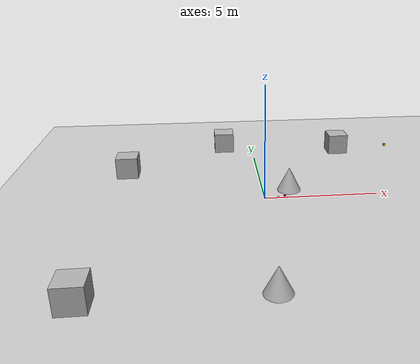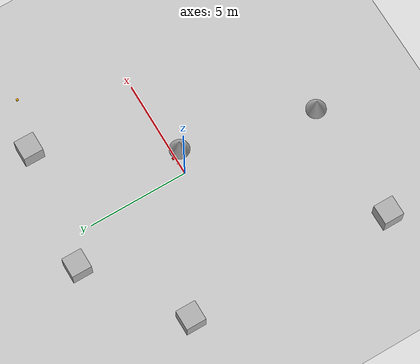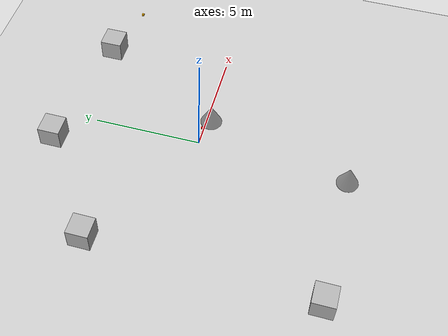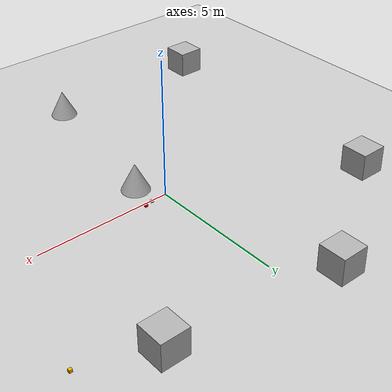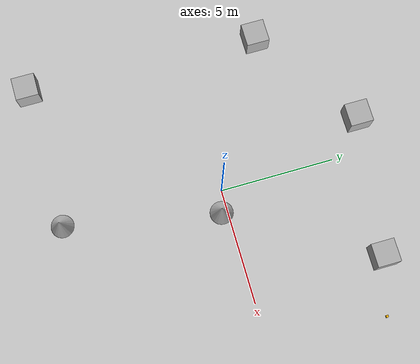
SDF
<sdf version='1.10'>
  <world name='empty'>
    <physics name='1ms' type='ignored'>
      <max_step_size>0.001</max_step_size>
      <real_time_factor>1</real_time_factor>
      <real_time_update_rate>1000</real_time_update_rate>
    </physics>
    <plugin name='gz::sim::systems::Physics' filename='gz-sim-physics-system'/>
    <plugin name='gz::sim::systems::UserCommands' filename='gz-sim-user-commands-system'/>
    <plugin name='gz::sim::systems::SceneBroadcaster' filename='gz-sim-scene-broadcaster-system'/>
    <plugin name='gz::sim::systems::Contact' filename='gz-sim-contact-system'/>

    <gravity>0 0 -9.8000000000000007</gravity>
    <magnetic_field>5.5644999999999998e-06 2.2875799999999999e-05 -4.2388400000000002e-05</magnetic_field>
    <atmosphere type='adiabatic'/>
    <scene>
      <ambient>0.400000006 0.400000006 0.400000006 1</ambient>
      <background>0.699999988 0.699999988 0.699999988 1</background>
      <shadows>true</shadows>
    </scene>
    <model name='ground_plane'>
      <static>true</static>
      <link name='link'>
        <collision name='collision'>
          <geometry>
            <plane>
              <normal>0 0 1</normal>
              <size>100 100</size>
            </plane>
          </geometry>
          <surface>
            <friction>
              <ode/>
            </friction>
            <bounce/>
            <contact/>
          </surface>
        </collision>
        <visual name='visual'>
          <geometry>
            <plane>
              <normal>0 0 1</normal>
              <size>100 100</size>
            </plane>
          </geometry>
          <material>
            <ambient>0.800000012 0.800000012 0.800000012 1</ambient>
            <diffuse>0.800000012 0.800000012 0.800000012 1</diffuse>
            <specular>0.800000012 0.800000012 0.800000012 1</specular>
          </material>
        </visual>
        <pose>0 0 0 0 0 0</pose>
        <inertial>
          <pose>0 0 0 0 0 0</pose>
          <mass>1</mass>
          <inertia>
            <ixx>1</ixx>
            <ixy>0</ixy>
            <ixz>0</ixz>
            <iyy>1</iyy>
            <iyz>0</iyz>
            <izz>1</izz>
          </inertia>
        </inertial>
        <enable_wind>false</enable_wind>
      </link>
      <pose>0 0 0 0 0 0</pose>
      <self_collide>false</self_collide>
    </model>
    <model name='box'>
      <pose>4.543856006001799 5.6987127331706091 0.49999999990199806 6.2287739151293738e-22 9.3279666454713669e-22 -3.6315533669320137e-22</pose>
      <link name='box_link'>
        <inertial>
          <inertia>
            <ixx>0.16666</ixx>
            <ixy>0</ixy>
            <ixz>0</ixz>
            <iyy>0.16666</iyy>
            <iyz>0</iyz>
            <izz>0.16666</izz>
          </inertia>
          <mass>1</mass>
          <pose>0 0 0 0 0 0</pose>
        </inertial>
        <collision name='box_collision'>
          <geometry>
            <box>
              <size>1 1 1</size>
            </box>
          </geometry>
          <surface>
            <friction>
              <ode/>
            </friction>
            <bounce/>
            <contact/>
          </surface>
        </collision>
        <visual name='box_visual'>
          <geometry>
            <box>
              <size>1 1 1</size>
            </box>
          </geometry>
          <material>
            <ambient>0.300000012 0.300000012 0.300000012 1</ambient>
            <diffuse>0.699999988 0.699999988 0.699999988 1</diffuse>
            <specular>1 1 1 1</specular>
          </material>
        </visual>
        <pose>0 0 0 0 0 0</pose>
        <enable_wind>false</enable_wind>
      </link>
      <static>false</static>
      <self_collide>false</self_collide>
    </model>
    <model name='box_0'>
      <pose>7.0 5.0 0.5 0 0 0</pose>
      <link name='box_link'>
        <inertial>
          <inertia>
            <ixx>0.016666</ixx>
            <ixy>0</ixy>
            <ixz>0</ixz>
            <iyy>0.016666</iyy>
            <iyz>0</iyz>
            <izz>0.016666</izz>
          </inertia>
          <mass>1</mass>
          <pose>0 0 0 0 0 0</pose>
        </inertial>
        <collision name='box_collision'>
          <geometry>
            <box>
              <size>0.1 0.1 0.1</size>
            </box>
          </geometry>
          <surface>
            <friction>
              <ode/>
            </friction>
            <bounce/>
            <contact/>
          </surface>
        </collision>
        <visual name='box_visual'>
          <geometry>
            <box>
              <size>0.1 0.1 0.1</size>
            </box>
          </geometry>
          <material>
            <ambient>0.300000012 0.300000012 0.300000012 1</ambient>
            <diffuse>1.0 0.699999988 0.0 1</diffuse>
            <specular>1 1 1 1</specular>
          </material>
        </visual>
        <pose>0 0 0 0 0 0</pose>
        <enable_wind>false</enable_wind>
      </link>
      <static>false</static>
      <self_collide>false</self_collide>
    </model>

 <model name='box_e'>
      <pose>0.9 0.1 0 0 0 0</pose>
      <link name='box_link'>
        <inertial>
          <inertia>
            <ixx>0.016666</ixx>
            <ixy>0</ixy>
            <ixz>0</ixz>
            <iyy>0.016666</iyy>
            <iyz>0</iyz>
            <izz>0.016666</izz>
          </inertia>
          <mass>1</mass>
          <pose>0 0 0 0 0 0</pose>
        </inertial>
        <collision name='box_collision'>
          <geometry>
            <box>
              <size>0.1 0.1 0.1</size>
            </box>
          </geometry>
          <surface>
            <friction>
              <ode/>
            </friction>
            <bounce/>
            <contact/>
          </surface>
        </collision>
        <visual name='box_visual'>
          <geometry>
            <box>
              <size>0.1 0.1 0.1</size>
            </box>
          </geometry>
          <material>
            <ambient>0.9 0.0 0.0 1</ambient>
            <diffuse>1.0 0.0 0.0 1</diffuse>
            <specular>1 1 1 1</specular>
          </material>
        </visual>
        <pose>0 0 0 0 0 0</pose>
        <enable_wind>false</enable_wind>
      </link>
      <static>false</static>
      <self_collide>false</self_collide>
    </model>

<model name='box_f'>
      <pose>0.6 0.02 0 0 0 0</pose>
      <link name='box_link'>
        <inertial>
          <inertia>
            <ixx>0.016666</ixx>
            <ixy>0</ixy>
            <ixz>0</ixz>
            <iyy>0.016666</iyy>
            <iyz>0</iyz>
            <izz>0.016666</izz>
          </inertia>
          <mass>1</mass>
          <pose>0 0 0 0 0 0</pose>
        </inertial>
        <collision name='box_collision'>
          <geometry>
            <box>
              <size>0.1 0.1 0.1</size>
            </box>
          </geometry>
          <surface>
            <friction>
              <ode/>
            </friction>
            <bounce/>
            <contact/>
          </surface>
        </collision>
        <visual name='box_visual'>
          <geometry>
            <box>
              <size>0.1 0.1 0.1</size>
            </box>
          </geometry>
          <material>
            <ambient>0.8 0.300000012 0.300000012 1</ambient>
            <diffuse>1.0 0.0 0.0 1</diffuse>
            <specular>1 1 1 1</specular>
          </material>
        </visual>
        <pose>0 0 0 0 0 0</pose>
        <enable_wind>false</enable_wind>
      </link>
      <static>false</static>
      <self_collide>false</self_collide>
    </model>

    <model name='box_1'>
      <pose>-6.213170180846225 3.3314655650004843 0.49999999990199806 6.2287739151293738e-22 9.3279666454713669e-22 -3.6315533669320137e-22</pose>
      <link name='box_link'>
        <inertial>
          <inertia>
            <ixx>0.16666</ixx>
            <ixy>0</ixy>
            <ixz>0</ixz>
            <iyy>0.16666</iyy>
            <iyz>0</iyz>
            <izz>0.16666</izz>
          </inertia>
          <mass>1</mass>
          <pose>0 0 0 0 0 0</pose>
        </inertial>
        <collision name='box_collision'>
          <geometry>
            <box>
              <size>1 1 1</size>
            </box>
          </geometry>
          <surface>
            <friction>
              <ode/>
            </friction>
            <bounce/>
            <contact/>
          </surface>
        </collision>
        <visual name='box_visual'>
          <geometry>
            <box>
              <size>1 1 1</size>
            </box>
          </geometry>
          <material>
            <ambient>0.300000012 0.300000012 0.300000012 1</ambient>
            <diffuse>0.699999988 0.699999988 0.699999988 1</diffuse>
            <specular>1 1 1 1</specular>
          </material>
        </visual>
        <pose>0 0 0 0 0 0</pose>
        <enable_wind>false</enable_wind>
      </link>
      <static>false</static>
      <self_collide>false</self_collide>
    </model>

    <model name='box_2'>
      <pose>-6.5605259168202625 -6.9415658182783631 0.49999999990199806 6.2287739151293738e-22 9.3279666454713669e-22 -3.6315533669320137e-22</pose>
      <link name='box_link'>
        <inertial>
          <inertia>
            <ixx>0.16666</ixx>
            <ixy>0</ixy>
            <ixz>0</ixz>
            <iyy>0.16666</iyy>
            <iyz>0</iyz>
            <izz>0.16666</izz>
          </inertia>
          <mass>1</mass>
          <pose>0 0 0 0 0 0</pose>
        </inertial>
        <collision name='box_collision'>
          <geometry>
            <box>
              <size>1 1 1</size>
            </box>
          </geometry>
          <surface>
            <friction>
              <ode/>
            </friction>
            <bounce/>
            <contact/>
          </surface>
        </collision>
        <visual name='box_visual'>
          <geometry>
            <box>
              <size>1 1 1</size>
            </box>
          </geometry>
          <material>
            <ambient>0.300000012 0.300000012 0.300000012 1</ambient>
            <diffuse>0.699999988 0.699999988 0.699999988 1</diffuse>
            <specular>1 1 1 1</specular>
          </material>
        </visual>
        <pose>0 0 0 0 0 0</pose>
        <enable_wind>false</enable_wind>
      </link>
      <static>false</static>
      <self_collide>false</self_collide>
    </model>
    <model name='box_3'>
      <pose>-1.4869705155024491 6.5368439491562436 0.49999999990199806 6.2287739151293738e-22 9.3279666454713669e-22 -3.6315533669320137e-22</pose>
      <link name='box_link'>
        <inertial>
          <inertia>
            <ixx>0.16666</ixx>
            <ixy>0</ixy>
            <ixz>0</ixz>
            <iyy>0.16666</iyy>
            <iyz>0</iyz>
            <izz>0.16666</izz>
          </inertia>
          <mass>1</mass>
          <pose>0 0 0 0 0 0</pose>
        </inertial>
        <collision name='box_collision'>
          <geometry>
            <box>
              <size>1 1 1</size>
            </box>
          </geometry>
          <surface>
            <friction>
              <ode/>
            </friction>
            <bounce/>
            <contact/>
          </surface>
        </collision>
        <visual name='box_visual'>
          <geometry>
            <box>
              <size>1 1 1</size>
            </box>
          </geometry>
          <material>
            <ambient>0.300000012 0.300000012 0.300000012 1</ambient>
            <diffuse>0.699999988 0.699999988 0.699999988 1</diffuse>
            <specular>1 1 1 1</specular>
          </material>
        </visual>
        <pose>0 0 0 0 0 0</pose>
        <enable_wind>false</enable_wind>
      </link>
      <static>false</static>
      <self_collide>false</self_collide>
    </model>

    <model name='camera'>
     <link name='camera_link'>
        <inertial>
          <inertia>
            <ixx>0.074999999999999997</ixx>
            <ixy>0</ixy>
            <ixz>0</ixz>
            <iyy>0.074999999999999997</iyy>
            <iyz>0</iyz>
            <izz>0.074999999999999997</izz>
          </inertia>
          <mass>1</mass>
           </inertial>
           <visual name='cone_visual'>
          <geometry>
            <cone>
              <radius>0.5</radius>
              <length>1</length>
            </cone>
          </geometry>
        <pose>0 0 0 0 -1.57 0</pose>
          <material>
            <ambient>0.300000012 0.300000012 0.300000012 1</ambient>
            <diffuse>0.699999988 0.699999988 0.699999988 1</diffuse>
            <specular>1 1 1 1</specular>
          </material>
        </visual>
          <pose>1.0 -0.3 1 0 1.57 0</pose>
       <sensor name="camera" type="camera">
        <always_on>1</always_on>
        <topic>camera</topic>
        <visualize>true</visualize>
        <update_rate>10</update_rate>
        <camera>
          <horizontal_fov>2.1</horizontal_fov>
          <image>
            <format>R8G8B8</format>
            <width>640</width>
            <height>480</height>
          </image>
          <clip>
            <near>0.05</near>
            <far>10.0</far>
          </clip>
        </camera>
      </sensor>
        </link>
      <static>true</static>
    </model>

    <model name='cone'>
      <pose>-0.38440834742178881 -6.9341723238960764 0.49999999993296756 5.254931119316858e-17 -7.7132841033999823e-10 6.969765996526587e-23</pose>
      <link name='cone_link'>
        <inertial>
          <inertia>
            <ixx>0.074999999999999997</ixx>
            <ixy>0</ixy>
            <ixz>0</ixz>
            <iyy>0.074999999999999997</iyy>
            <iyz>0</iyz>
            <izz>0.074999999999999997</izz>
          </inertia>
          <mass>1</mass>
          <pose>0 0 0 0 0 0</pose>
        </inertial>
        <collision name='cone_collision'>
          <geometry>
            <cone>
              <radius>0.5</radius>
              <length>1</length>
            </cone>
          </geometry>
          <surface>
            <friction>
              <ode/>
            </friction>
            <bounce/>
            <contact/>
          </surface>
        </collision>
        <visual name='cone_visual'>
          <geometry>
            <cone>
              <radius>0.5</radius>
              <length>1</length>
            </cone>
          </geometry>
          <material>
            <ambient>0.300000012 0.300000012 0.300000012 1</ambient>
            <diffuse>0.699999988 0.699999988 0.699999988 1</diffuse>
            <specular>1 1 1 1</specular>
          </material>
        </visual>
        <pose>0 0 0 0 0 0</pose>
        <enable_wind>false</enable_wind>
      </link>
      <static>false</static>
      <self_collide>false</self_collide>
    </model>

    <light name='sun' type='directional'>
      <pose>0 0 10 0 0 0</pose>
      <cast_shadows>true</cast_shadows>
      <intensity>1</intensity>
      <direction>-0.5 0.10000000000000001 -0.90000000000000002</direction>
      <diffuse>0.800000012 0.800000012 0.800000012 1</diffuse>
      <specular>0.200000003 0.200000003 0.200000003 1</specular>
      <attenuation>
        <range>1000</range>
        <linear>0.01</linear>
        <constant>0.90000000000000002</constant>
        <quadratic>0.001</quadratic>
      </attenuation>
      <spot>
        <inner_angle>0</inner_angle>
        <outer_angle>0</outer_angle>
        <falloff>0</falloff>
      </spot>
    </light>
  </world>
</sdf>
